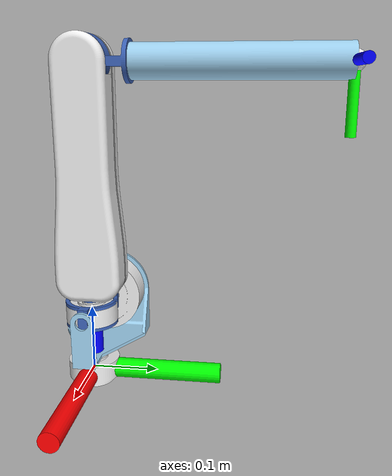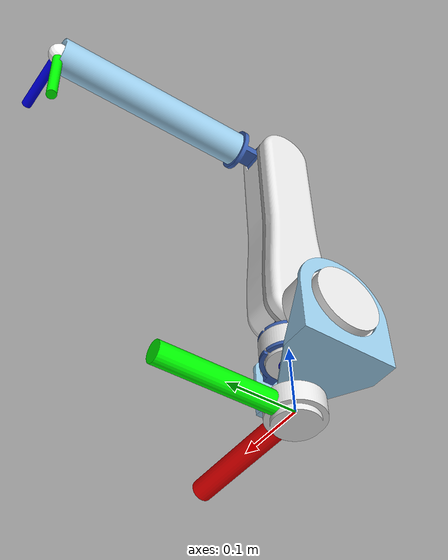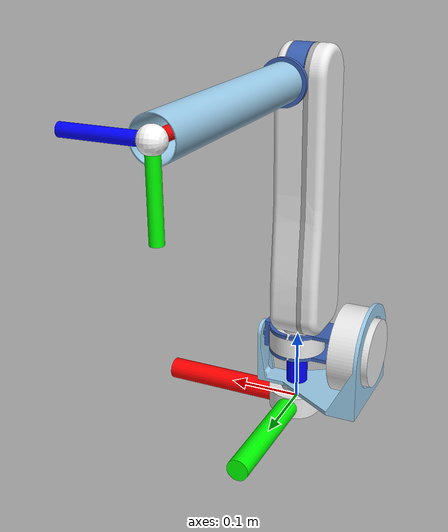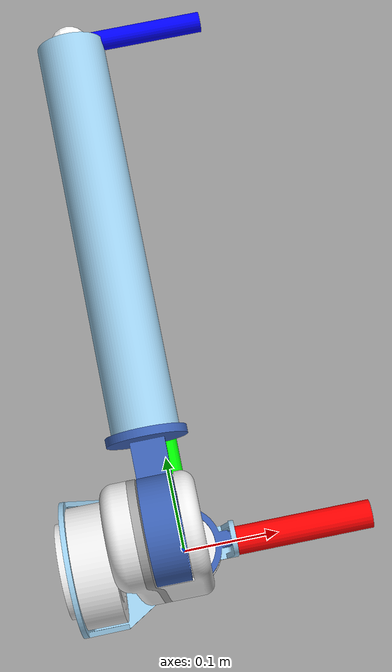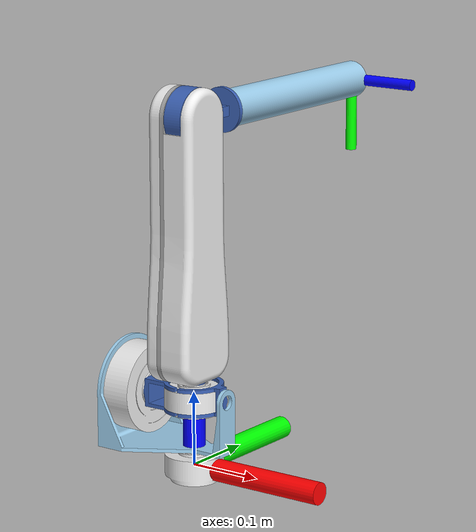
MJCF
<?xml version='1.0' encoding='utf-8'?>
<mujoco model="sim_arm_141-1x3-none">
  <compiler angle="radian" meshdir="meshes" />
  <option timestep="0.001" gravity="0 0 -9.81"></option>

  <asset>
    <mesh name="rs01_sim_1" file="rs01_sim_1.stl" />
    <mesh name="main_shoulder_bracket_1597ccc2460cce77d" file="main_shoulder_bracket_1597ccc2460cce77d.stl" />
    <mesh name="rs04_sim_1" file="rs04_sim_1.stl" />
    <mesh name="m3_to_bearing_bracket_1597ccc2460cce77d" file="m3_to_bearing_bracket_1597ccc2460cce77d.stl" />
    <mesh name="rs01_sim_2" file="rs01_sim_2.stl" />
    <mesh name="m2_to_m3_bracket_1597ccc2460cce77d" file="m2_to_m3_bracket_1597ccc2460cce77d.stl" />
    <mesh name="shoulder_input_1" file="shoulder_input_1.stl" />
    <mesh name="main_plate_1" file="main_plate_1.stl" />
    <mesh name="rs01_sim_3" file="rs01_sim_3.stl" />
    <mesh name="motor_side_shell_1" file="motor_side_shell_1.stl" />
    <mesh name="trans_side_shell_1" file="trans_side_shell_1.stl" />
    <mesh name="secondary_plate_1" file="secondary_plate_1.stl" />
    <mesh name="wrist_output_1" file="wrist_output_1.stl" />
    <mesh name="dummy_tube_wrist_1" file="dummy_tube_wrist_1.stl" />
  </asset>

  <contact>
      <exclude name="fix1" body1="root" body2="body_2"/>
      <exclude name="fix2" body1="root" body2="body_3"/>
      <exclude name="fix3" body1="root" body2="body_4"/>
      <exclude name="fix4" body1="body_1" body2="body_3"/>
      <exclude name="fix5" body1="body_1" body2="body_4"/>
      <exclude name="fix6" body1="body_2" body2="body_4"/>
  </contact>

  <worldbody>
    <site type="cylinder" name="worldX" pos = "0.1 0 0" euler="0 1.570796 0" size="0.015 0.1" rgba="1 0 0 1" />
    <site type="cylinder" name="worldY" pos = "0 0.1 0" euler="1.570796 0 0" size="0.015 0.1" rgba="0 1 0 1" />
    <site type="cylinder" name="worldZ" pos = "0 0 0.1" euler="0 0 0" size="0.015 0.1" rgba="0 0 1 1" />

    <body name="root" pos="0 0 0" quat="1 0 0 0">
      <geom type="mesh" rgba="0.917647 0.917647 0.917647 1" mesh="rs01_sim_1" />
      <body name="body_1" pos="0 0 0.0205129">
        <joint name="joint_j1" pos="0 0 0" axis="0 0 -1" range="-3.14159 3.14159" actuatorfrcrange="-80 80" />
        <geom type="mesh" rgba="0.615686 0.811765 0.929412 1" mesh="main_shoulder_bracket_1597ccc2460cce77d" />
        <geom pos="-0.10375 0 0.074" quat="-1.64085e-08 -0.707107 -1.64085e-08 0.707107" type="mesh" rgba="0.917647 0.917647 0.917647 1" mesh="rs04_sim_1" />
        <body name="body_2" pos="-0.06425 1.8332e-09 0.074" quat="0.5 -0.5 -0.5 0.5">
          <joint name="joint_j2" pos="0 0 0" axis="0 0 1" range="-3.14159 3.14159" actuatorfrcrange="-80 80" />
          <geom type="mesh" rgba="0.231373 0.380392 0.705882 1" mesh="m3_to_bearing_bracket_1597ccc2460cce77d" />
          <geom pos="0 -0.014 -0.06425" quat="0.5 -0.5 0.5 0.5" type="mesh" rgba="0.917647 0.917647 0.917647 1" mesh="rs01_sim_2" />
          <geom pos="0 -0.014 -0.06425" quat="0.5 -0.5 0.5 0.5" type="mesh" rgba="0.231373 0.380392 0.705882 1" mesh="m2_to_m3_bracket_1597ccc2460cce77d" />
          <body name="body_3" pos="-1.0718e-10 -0.018 -0.06425" quat="0.5 -0.5 0.5 0.5">
            <joint name="joint_j3" pos="0 0 0" axis="0 0 1" range="-3.14159 3.14159" actuatorfrcrange="-80 80" />
            <geom type="mesh" rgba="0.231373 0.380392 0.705882 1" mesh="shoulder_input_1" />
            <geom pos="-0.0165 0 -0.003" quat="-1.64085e-08 -0.707107 1.64085e-08 -0.707107" type="mesh" rgba="0.647059 0.647059 0.647059 1" mesh="main_plate_1" />
            <geom pos="-0.0165 0 -0.05225" quat="-1.64085e-08 -0.707107 1.64085e-08 -0.707107" type="mesh" rgba="0.917647 0.917647 0.917647 1" mesh="rs01_sim_3" />
            <geom pos="0.0115 -1.29949e-09 -0.05225" quat="0.707107 0 -0.707107 0" type="mesh" rgba="0.917647 0.917647 0.917647 1" mesh="secondary_plate_1" />
            <geom pos="-0.0165 0.04925 -0.042625" quat="0.707107 0 -0.707107 0" type="mesh" rgba="0.917647 0.917647 0.917647 1" mesh="motor_side_shell_1" />
            <geom pos="-0.02275 0.04925 -0.042625" quat="-1.64085e-08 -0.707107 1.64085e-08 -0.707107" type="mesh" rgba="0.917647 0.917647 0.917647 1" mesh="trans_side_shell_1" />
            <body name="body_4" pos="0.01225 -1.29949e-09 -0.35225" quat="0.5 0.5 0.5 0.5">
              <joint name="joint_j4" pos="0 0 0" axis="0 0 1" range="-2.61799 2.61799" actuatorfrcrange="-80 80" />
              <geom type="mesh" rgba="0.231373 0.380392 0.705882 1" mesh="wrist_output_1" />
              <geom pos="-0.07125 0 -0.01475" quat="-1.64085e-08 -0.707107 1.64085e-08 -0.707107" type="mesh" rgba="0.615686 0.811765 0.929412 1" mesh="dummy_tube_wrist_1" />
              <geom type='sphere' size='.001' pos='-0.37125 0 -0.015' rgba='1 1 1 1' mass='0'/>
              <site type='sphere' size='.015' name='endeff' pos='-0.37125 0 -0.015' rgba='1 1 1 1'/>
              <site type="cylinder" name="endeffX" pos = "-0.32125 0 -0.015" euler="0 1.570796 0" size="0.0075 0.05" rgba="1 0 0 1" />
              <site type="cylinder" name="endeffY" pos = "-0.37125 0.05 -0.015" euler="1.570796 0 0" size="0.0075 0.05" rgba="0 1 0 1" />
              <site type="cylinder" name="endeffZ" pos = "-0.37125 0 0.035" euler="0 0 0" size="0.0075 0.05" rgba="0 0 1 1" />
            </body>
          </body>
        </body>
      </body>
    </body>
  </worldbody>
</mujoco>
